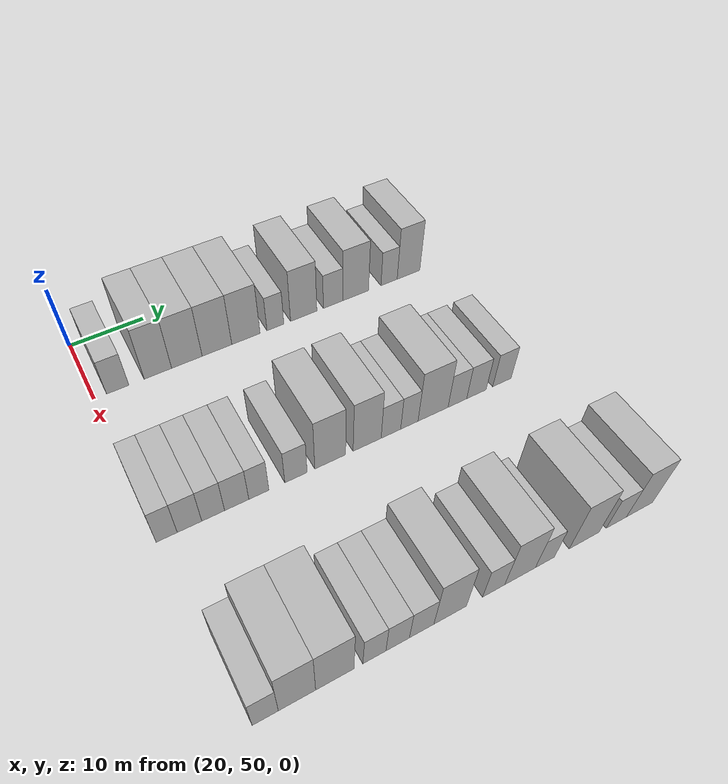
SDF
<sdf version="1.6">
 <world name="default">
  <model name="building_79">
   <static>1</static>
   <pose>25.0000 53.1087 0 0.000000 0.000000 0.000000</pose>
   <link name="link">
    <pose>0 0 3.00 0 0 0</pose>
    <collision name="collision"><geometry><box><size>10.0000 2.8990 6.0000</size></box></geometry></collision>
    <visual name="visual">
     <cast_shadows>0</cast_shadows>
     <geometry><box><size>10.0000 2.8990 6.0000</size></box></geometry>
     <material>
      <script>
       <uri>model://HANNAS_wall/materials/scripts</uri>
       <uri>model://HANNAS_wall/materials/textures</uri>
       <name>vrc/HANNAS_wall</name>
      </script>
     </material>
    </visual>
   </link>
  </model>
  <model name="building_80">
   <static>1</static>
   <pose>25.0000 58.3945 0 0.000000 0.000000 0.000000</pose>
   <link name="link">
    <pose>0 0 4.50 0 0 0</pose>
    <collision name="collision"><geometry><box><size>10.0000 3.6726 9.0000</size></box></geometry></collision>
    <visual name="visual">
     <cast_shadows>0</cast_shadows>
     <geometry><box><size>10.0000 3.6726 9.0000</size></box></geometry>
     <material>
      <script>
       <uri>model://HANNAS_wall/materials/scripts</uri>
       <uri>model://HANNAS_wall/materials/textures</uri>
       <name>vrc/HANNAS_wall</name>
      </script>
     </material>
    </visual>
   </link>
  </model>
  <model name="building_81">
   <static>1</static>
   <pose>25.0000 62.3206 0 0.000000 0.000000 0.000000</pose>
   <link name="link">
    <pose>0 0 4.50 0 0 0</pose>
    <collision name="collision"><geometry><box><size>10.0000 4.1797 9.0000</size></box></geometry></collision>
    <visual name="visual">
     <cast_shadows>0</cast_shadows>
     <geometry><box><size>10.0000 4.1797 9.0000</size></box></geometry>
     <material>
      <script>
       <uri>model://HANNAS_wall/materials/scripts</uri>
       <uri>model://HANNAS_wall/materials/textures</uri>
       <name>vrc/HANNAS_wall</name>
      </script>
     </material>
    </visual>
   </link>
  </model>
  <model name="building_82">
   <static>1</static>
   <pose>25.0000 66.4880 0 0.000000 0.000000 0.000000</pose>
   <link name="link">
    <pose>0 0 4.50 0 0 0</pose>
    <collision name="collision"><geometry><box><size>10.0000 4.1550 9.0000</size></box></geometry></collision>
    <visual name="visual">
     <cast_shadows>0</cast_shadows>
     <geometry><box><size>10.0000 4.1550 9.0000</size></box></geometry>
     <material>
      <script>
       <uri>model://HANNAS_wall/materials/scripts</uri>
       <uri>model://HANNAS_wall/materials/textures</uri>
       <name>vrc/HANNAS_wall</name>
      </script>
     </material>
    </visual>
   </link>
  </model>
  <model name="building_83">
   <static>1</static>
   <pose>25.0000 70.5972 0 0.000000 0.000000 0.000000</pose>
   <link name="link">
    <pose>0 0 4.50 0 0 0</pose>
    <collision name="collision"><geometry><box><size>10.0000 4.0636 9.0000</size></box></geometry></collision>
    <visual name="visual">
     <cast_shadows>0</cast_shadows>
     <geometry><box><size>10.0000 4.0636 9.0000</size></box></geometry>
     <material>
      <script>
       <uri>model://HANNAS_wall/materials/scripts</uri>
       <uri>model://HANNAS_wall/materials/textures</uri>
       <name>vrc/HANNAS_wall</name>
      </script>
     </material>
    </visual>
   </link>
  </model>
  <model name="building_84">
   <static>1</static>
   <pose>25.0000 74.8687 0 0.000000 0.000000 0.000000</pose>
   <link name="link">
    <pose>0 0 3.00 0 0 0</pose>
    <collision name="collision"><geometry><box><size>10.0000 2.4794 6.0000</size></box></geometry></collision>
    <visual name="visual">
     <cast_shadows>0</cast_shadows>
     <geometry><box><size>10.0000 2.4794 6.0000</size></box></geometry>
     <material>
      <script>
       <uri>model://HANNAS_wall/materials/scripts</uri>
       <uri>model://HANNAS_wall/materials/textures</uri>
       <name>vrc/HANNAS_wall</name>
      </script>
     </material>
    </visual>
   </link>
  </model>
  <model name="building_85">
   <static>1</static>
   <pose>25.0000 79.0882 0 0.000000 0.000000 0.000000</pose>
   <link name="link">
    <pose>0 0 4.50 0 0 0</pose>
    <collision name="collision"><geometry><box><size>10.0000 3.9595 9.0000</size></box></geometry></collision>
    <visual name="visual">
     <cast_shadows>0</cast_shadows>
     <geometry><box><size>10.0000 3.9595 9.0000</size></box></geometry>
     <material>
      <script>
       <uri>model://HANNAS_wall/materials/scripts</uri>
       <uri>model://HANNAS_wall/materials/textures</uri>
       <name>vrc/HANNAS_wall</name>
      </script>
     </material>
    </visual>
   </link>
  </model>
  <model name="building_86">
   <static>1</static>
   <pose>25.0000 83.5553 0 0.000000 0.000000 0.000000</pose>
   <link name="link">
    <pose>0 0 3.00 0 0 0</pose>
    <collision name="collision"><geometry><box><size>10.0000 2.9748 6.0000</size></box></geometry></collision>
    <visual name="visual">
     <cast_shadows>0</cast_shadows>
     <geometry><box><size>10.0000 2.9748 6.0000</size></box></geometry>
     <material>
      <script>
       <uri>model://HANNAS_wall/materials/scripts</uri>
       <uri>model://HANNAS_wall/materials/textures</uri>
       <name>vrc/HANNAS_wall</name>
      </script>
     </material>
    </visual>
   </link>
  </model>
  <model name="building_87">
   <static>1</static>
   <pose>25.0000 87.0784 0 0.000000 0.000000 0.000000</pose>
   <link name="link">
    <pose>0 0 4.50 0 0 0</pose>
    <collision name="collision"><geometry><box><size>10.0000 4.0715 9.0000</size></box></geometry></collision>
    <visual name="visual">
     <cast_shadows>0</cast_shadows>
     <geometry><box><size>10.0000 4.0715 9.0000</size></box></geometry>
     <material>
      <script>
       <uri>model://HANNAS_wall/materials/scripts</uri>
       <uri>model://HANNAS_wall/materials/textures</uri>
       <name>vrc/HANNAS_wall</name>
      </script>
     </material>
    </visual>
   </link>
  </model>
  <model name="building_88">
   <static>1</static>
   <pose>25.0000 92.4299 0 0.000000 0.000000 0.000000</pose>
   <link name="link">
    <pose>0 0 3.00 0 0 0</pose>
    <collision name="collision"><geometry><box><size>10.0000 2.6314 6.0000</size></box></geometry></collision>
    <visual name="visual">
     <cast_shadows>0</cast_shadows>
     <geometry><box><size>10.0000 2.6314 6.0000</size></box></geometry>
     <material>
      <script>
       <uri>model://HANNAS_wall/materials/scripts</uri>
       <uri>model://HANNAS_wall/materials/textures</uri>
       <name>vrc/HANNAS_wall</name>
      </script>
     </material>
    </visual>
   </link>
  </model>
  <model name="building_89">
   <static>1</static>
   <pose>25.0000 95.6100 0 0.000000 0.000000 0.000000</pose>
   <link name="link">
    <pose>0 0 4.50 0 0 0</pose>
    <collision name="collision"><geometry><box><size>10.0000 3.7290 9.0000</size></box></geometry></collision>
    <visual name="visual">
     <cast_shadows>0</cast_shadows>
     <geometry><box><size>10.0000 3.7290 9.0000</size></box></geometry>
     <material>
      <script>
       <uri>model://HANNAS_wall/materials/scripts</uri>
       <uri>model://HANNAS_wall/materials/textures</uri>
       <name>vrc/HANNAS_wall</name>
      </script>
     </material>
    </visual>
   </link>
  </model>
  <model name="building_198">
   <static>1</static>
   <pose>47.0000 51.1799 0 0.000000 0.000000 0.000000</pose>
   <link name="link">
    <pose>0 0 3.00 0 0 0</pose>
    <collision name="collision"><geometry><box><size>10.0000 2.4320 6.0000</size></box></geometry></collision>
    <visual name="visual">
     <cast_shadows>0</cast_shadows>
     <geometry><box><size>10.0000 2.4320 6.0000</size></box></geometry>
     <material>
      <script>
       <uri>model://HANNAS_wall/materials/scripts</uri>
       <uri>model://HANNAS_wall/materials/textures</uri>
       <name>vrc/HANNAS_wall</name>
      </script>
     </material>
    </visual>
   </link>
  </model>
  <model name="building_199">
   <static>1</static>
   <pose>47.0000 53.8303 0 0.000000 0.000000 0.000000</pose>
   <link name="link">
    <pose>0 0 3.00 0 0 0</pose>
    <collision name="collision"><geometry><box><size>10.0000 2.8690 6.0000</size></box></geometry></collision>
    <visual name="visual">
     <cast_shadows>0</cast_shadows>
     <geometry><box><size>10.0000 2.8690 6.0000</size></box></geometry>
     <material>
      <script>
       <uri>model://HANNAS_wall/materials/scripts</uri>
       <uri>model://HANNAS_wall/materials/textures</uri>
       <name>vrc/HANNAS_wall</name>
      </script>
     </material>
    </visual>
   </link>
  </model>
  <model name="building_200">
   <static>1</static>
   <pose>47.0000 56.6304 0 0.000000 0.000000 0.000000</pose>
   <link name="link">
    <pose>0 0 3.00 0 0 0</pose>
    <collision name="collision"><geometry><box><size>10.0000 2.7310 6.0000</size></box></geometry></collision>
    <visual name="visual">
     <cast_shadows>0</cast_shadows>
     <geometry><box><size>10.0000 2.7310 6.0000</size></box></geometry>
     <material>
      <script>
       <uri>model://HANNAS_wall/materials/scripts</uri>
       <uri>model://HANNAS_wall/materials/textures</uri>
       <name>vrc/HANNAS_wall</name>
      </script>
     </material>
    </visual>
   </link>
  </model>
  <model name="building_201">
   <static>1</static>
   <pose>47.0000 59.4720 0 0.000000 0.000000 0.000000</pose>
   <link name="link">
    <pose>0 0 3.00 0 0 0</pose>
    <collision name="collision"><geometry><box><size>10.0000 2.9523 6.0000</size></box></geometry></collision>
    <visual name="visual">
     <cast_shadows>0</cast_shadows>
     <geometry><box><size>10.0000 2.9523 6.0000</size></box></geometry>
     <material>
      <script>
       <uri>model://HANNAS_wall/materials/scripts</uri>
       <uri>model://HANNAS_wall/materials/textures</uri>
       <name>vrc/HANNAS_wall</name>
      </script>
     </material>
    </visual>
   </link>
  </model>
  <model name="building_202">
   <static>1</static>
   <pose>47.0000 62.1938 0 0.000000 0.000000 0.000000</pose>
   <link name="link">
    <pose>0 0 3.00 0 0 0</pose>
    <collision name="collision"><geometry><box><size>10.0000 2.4914 6.0000</size></box></geometry></collision>
    <visual name="visual">
     <cast_shadows>0</cast_shadows>
     <geometry><box><size>10.0000 2.4914 6.0000</size></box></geometry>
     <material>
      <script>
       <uri>model://HANNAS_wall/materials/scripts</uri>
       <uri>model://HANNAS_wall/materials/textures</uri>
       <name>vrc/HANNAS_wall</name>
      </script>
     </material>
    </visual>
   </link>
  </model>
  <model name="building_203">
   <static>1</static>
   <pose>47.0000 66.8633 0 0.000000 0.000000 0.000000</pose>
   <link name="link">
    <pose>0 0 3.00 0 0 0</pose>
    <collision name="collision"><geometry><box><size>10.0000 2.8476 6.0000</size></box></geometry></collision>
    <visual name="visual">
     <cast_shadows>0</cast_shadows>
     <geometry><box><size>10.0000 2.8476 6.0000</size></box></geometry>
     <material>
      <script>
       <uri>model://HANNAS_wall/materials/scripts</uri>
       <uri>model://HANNAS_wall/materials/textures</uri>
       <name>vrc/HANNAS_wall</name>
      </script>
     </material>
    </visual>
   </link>
  </model>
  <model name="building_204">
   <static>1</static>
   <pose>47.0000 71.3145 0 0.000000 0.000000 0.000000</pose>
   <link name="link">
    <pose>0 0 4.50 0 0 0</pose>
    <collision name="collision"><geometry><box><size>10.0000 4.0547 9.0000</size></box></geometry></collision>
    <visual name="visual">
     <cast_shadows>0</cast_shadows>
     <geometry><box><size>10.0000 4.0547 9.0000</size></box></geometry>
     <material>
      <script>
       <uri>model://HANNAS_wall/materials/scripts</uri>
       <uri>model://HANNAS_wall/materials/textures</uri>
       <name>vrc/HANNAS_wall</name>
      </script>
     </material>
    </visual>
   </link>
  </model>
  <model name="building_205">
   <static>1</static>
   <pose>47.0000 76.2511 0 0.000000 0.000000 0.000000</pose>
   <link name="link">
    <pose>0 0 4.50 0 0 0</pose>
    <collision name="collision"><geometry><box><size>10.0000 3.8185 9.0000</size></box></geometry></collision>
    <visual name="visual">
     <cast_shadows>0</cast_shadows>
     <geometry><box><size>10.0000 3.8185 9.0000</size></box></geometry>
     <material>
      <script>
       <uri>model://HANNAS_wall/materials/scripts</uri>
       <uri>model://HANNAS_wall/materials/textures</uri>
       <name>vrc/HANNAS_wall</name>
      </script>
     </material>
    </visual>
   </link>
  </model>
  <model name="building_206">
   <static>1</static>
   <pose>47.0000 79.5154 0 0.000000 0.000000 0.000000</pose>
   <link name="link">
    <pose>0 0 3.00 0 0 0</pose>
    <collision name="collision"><geometry><box><size>10.0000 2.7102 6.0000</size></box></geometry></collision>
    <visual name="visual">
     <cast_shadows>0</cast_shadows>
     <geometry><box><size>10.0000 2.7102 6.0000</size></box></geometry>
     <material>
      <script>
       <uri>model://HANNAS_wall/materials/scripts</uri>
       <uri>model://HANNAS_wall/materials/textures</uri>
       <name>vrc/HANNAS_wall</name>
      </script>
     </material>
    </visual>
   </link>
  </model>
  <model name="building_207">
   <static>1</static>
   <pose>47.0000 82.0980 0 0.000000 0.000000 0.000000</pose>
   <link name="link">
    <pose>0 0 3.00 0 0 0</pose>
    <collision name="collision"><geometry><box><size>10.0000 2.4549 6.0000</size></box></geometry></collision>
    <visual name="visual">
     <cast_shadows>0</cast_shadows>
     <geometry><box><size>10.0000 2.4549 6.0000</size></box></geometry>
     <material>
      <script>
       <uri>model://HANNAS_wall/materials/scripts</uri>
       <uri>model://HANNAS_wall/materials/textures</uri>
       <name>vrc/HANNAS_wall</name>
      </script>
     </material>
    </visual>
   </link>
  </model>
  <model name="building_208">
   <static>1</static>
   <pose>47.0000 85.4906 0 0.000000 0.000000 0.000000</pose>
   <link name="link">
    <pose>0 0 4.50 0 0 0</pose>
    <collision name="collision"><geometry><box><size>10.0000 4.3303 9.0000</size></box></geometry></collision>
    <visual name="visual">
     <cast_shadows>0</cast_shadows>
     <geometry><box><size>10.0000 4.3303 9.0000</size></box></geometry>
     <material>
      <script>
       <uri>model://HANNAS_wall/materials/scripts</uri>
       <uri>model://HANNAS_wall/materials/textures</uri>
       <name>vrc/HANNAS_wall</name>
      </script>
     </material>
    </visual>
   </link>
  </model>
  <model name="building_209">
   <static>1</static>
   <pose>47.0000 89.0313 0 0.000000 0.000000 0.000000</pose>
   <link name="link">
    <pose>0 0 3.00 0 0 0</pose>
    <collision name="collision"><geometry><box><size>10.0000 2.7510 6.0000</size></box></geometry></collision>
    <visual name="visual">
     <cast_shadows>0</cast_shadows>
     <geometry><box><size>10.0000 2.7510 6.0000</size></box></geometry>
     <material>
      <script>
       <uri>model://HANNAS_wall/materials/scripts</uri>
       <uri>model://HANNAS_wall/materials/textures</uri>
       <name>vrc/HANNAS_wall</name>
      </script>
     </material>
    </visual>
   </link>
  </model>
  <model name="building_210">
   <static>1</static>
   <pose>47.0000 91.8618 0 0.000000 0.000000 0.000000</pose>
   <link name="link">
    <pose>0 0 3.00 0 0 0</pose>
    <collision name="collision"><geometry><box><size>10.0000 2.9099 6.0000</size></box></geometry></collision>
    <visual name="visual">
     <cast_shadows>0</cast_shadows>
     <geometry><box><size>10.0000 2.9099 6.0000</size></box></geometry>
     <material>
      <script>
       <uri>model://HANNAS_wall/materials/scripts</uri>
       <uri>model://HANNAS_wall/materials/textures</uri>
       <name>vrc/HANNAS_wall</name>
      </script>
     </material>
    </visual>
   </link>
  </model>
  <model name="building_211">
   <static>1</static>
   <pose>47.0000 95.7289 0 0.000000 0.000000 0.000000</pose>
   <link name="link">
    <pose>0 0 3.00 0 0 0</pose>
    <collision name="collision"><geometry><box><size>10.0000 2.8244 6.0000</size></box></geometry></collision>
    <visual name="visual">
     <cast_shadows>0</cast_shadows>
     <geometry><box><size>10.0000 2.8244 6.0000</size></box></geometry>
     <material>
      <script>
       <uri>model://HANNAS_wall/materials/scripts</uri>
       <uri>model://HANNAS_wall/materials/textures</uri>
       <name>vrc/HANNAS_wall</name>
      </script>
     </material>
    </visual>
   </link>
  </model>
  <model name="building_321">
   <static>1</static>
   <pose>69.0000 52.5843 0 0.000000 0.000000 0.000000</pose>
   <link name="link">
    <pose>0 0 3.00 0 0 0</pose>
    <collision name="collision"><geometry><box><size>10.0000 2.7137 6.0000</size></box></geometry></collision>
    <visual name="visual">
     <cast_shadows>0</cast_shadows>
     <geometry><box><size>10.0000 2.7137 6.0000</size></box></geometry>
     <material>
      <script>
       <uri>model://HANNAS_wall/materials/scripts</uri>
       <uri>model://HANNAS_wall/materials/textures</uri>
       <name>vrc/HANNAS_wall</name>
      </script>
     </material>
    </visual>
   </link>
  </model>
  <model name="building_322">
   <static>1</static>
   <pose>69.0000 55.9222 0 0.000000 0.000000 0.000000</pose>
   <link name="link">
    <pose>0 0 4.50 0 0 0</pose>
    <collision name="collision"><geometry><box><size>10.0000 3.9621 9.0000</size></box></geometry></collision>
    <visual name="visual">
     <cast_shadows>0</cast_shadows>
     <geometry><box><size>10.0000 3.9621 9.0000</size></box></geometry>
     <material>
      <script>
       <uri>model://HANNAS_wall/materials/scripts</uri>
       <uri>model://HANNAS_wall/materials/textures</uri>
       <name>vrc/HANNAS_wall</name>
      </script>
     </material>
    </visual>
   </link>
  </model>
  <model name="building_323">
   <static>1</static>
   <pose>69.0000 60.0016 0 0.000000 0.000000 0.000000</pose>
   <link name="link">
    <pose>0 0 4.50 0 0 0</pose>
    <collision name="collision"><geometry><box><size>10.0000 4.1967 9.0000</size></box></geometry></collision>
    <visual name="visual">
     <cast_shadows>0</cast_shadows>
     <geometry><box><size>10.0000 4.1967 9.0000</size></box></geometry>
     <material>
      <script>
       <uri>model://HANNAS_wall/materials/scripts</uri>
       <uri>model://HANNAS_wall/materials/textures</uri>
       <name>vrc/HANNAS_wall</name>
      </script>
     </material>
    </visual>
   </link>
  </model>
  <model name="building_324">
   <static>1</static>
   <pose>69.0000 64.4091 0 0.000000 0.000000 0.000000</pose>
   <link name="link">
    <pose>0 0 3.00 0 0 0</pose>
    <collision name="collision"><geometry><box><size>10.0000 2.6183 6.0000</size></box></geometry></collision>
    <visual name="visual">
     <cast_shadows>0</cast_shadows>
     <geometry><box><size>10.0000 2.6183 6.0000</size></box></geometry>
     <material>
      <script>
       <uri>model://HANNAS_wall/materials/scripts</uri>
       <uri>model://HANNAS_wall/materials/textures</uri>
       <name>vrc/HANNAS_wall</name>
      </script>
     </material>
    </visual>
   </link>
  </model>
  <model name="building_325">
   <static>1</static>
   <pose>69.0000 67.0778 0 0.000000 0.000000 0.000000</pose>
   <link name="link">
    <pose>0 0 3.00 0 0 0</pose>
    <collision name="collision"><geometry><box><size>10.0000 2.7191 6.0000</size></box></geometry></collision>
    <visual name="visual">
     <cast_shadows>0</cast_shadows>
     <geometry><box><size>10.0000 2.7191 6.0000</size></box></geometry>
     <material>
      <script>
       <uri>model://HANNAS_wall/materials/scripts</uri>
       <uri>model://HANNAS_wall/materials/textures</uri>
       <name>vrc/HANNAS_wall</name>
      </script>
     </material>
    </visual>
   </link>
  </model>
  <model name="building_326">
   <static>1</static>
   <pose>69.0000 69.8895 0 0.000000 0.000000 0.000000</pose>
   <link name="link">
    <pose>0 0 3.00 0 0 0</pose>
    <collision name="collision"><geometry><box><size>10.0000 2.9042 6.0000</size></box></geometry></collision>
    <visual name="visual">
     <cast_shadows>0</cast_shadows>
     <geometry><box><size>10.0000 2.9042 6.0000</size></box></geometry>
     <material>
      <script>
       <uri>model://HANNAS_wall/materials/scripts</uri>
       <uri>model://HANNAS_wall/materials/textures</uri>
       <name>vrc/HANNAS_wall</name>
      </script>
     </material>
    </visual>
   </link>
  </model>
  <model name="building_327">
   <static>1</static>
   <pose>69.0000 73.3244 0 0.000000 0.000000 0.000000</pose>
   <link name="link">
    <pose>0 0 4.50 0 0 0</pose>
    <collision name="collision"><geometry><box><size>10.0000 3.9657 9.0000</size></box></geometry></collision>
    <visual name="visual">
     <cast_shadows>0</cast_shadows>
     <geometry><box><size>10.0000 3.9657 9.0000</size></box></geometry>
     <material>
      <script>
       <uri>model://HANNAS_wall/materials/scripts</uri>
       <uri>model://HANNAS_wall/materials/textures</uri>
       <name>vrc/HANNAS_wall</name>
      </script>
     </material>
    </visual>
   </link>
  </model>
  <model name="building_328">
   <static>1</static>
   <pose>69.0000 78.7101 0 0.000000 0.000000 0.000000</pose>
   <link name="link">
    <pose>0 0 3.00 0 0 0</pose>
    <collision name="collision"><geometry><box><size>10.0000 2.8056 6.0000</size></box></geometry></collision>
    <visual name="visual">
     <cast_shadows>0</cast_shadows>
     <geometry><box><size>10.0000 2.8056 6.0000</size></box></geometry>
     <material>
      <script>
       <uri>model://HANNAS_wall/materials/scripts</uri>
       <uri>model://HANNAS_wall/materials/textures</uri>
       <name>vrc/HANNAS_wall</name>
      </script>
     </material>
    </visual>
   </link>
  </model>
  <model name="building_329">
   <static>1</static>
   <pose>69.0000 82.1051 0 0.000000 0.000000 0.000000</pose>
   <link name="link">
    <pose>0 0 4.50 0 0 0</pose>
    <collision name="collision"><geometry><box><size>10.0000 3.9844 9.0000</size></box></geometry></collision>
    <visual name="visual">
     <cast_shadows>0</cast_shadows>
     <geometry><box><size>10.0000 3.9844 9.0000</size></box></geometry>
     <material>
      <script>
       <uri>model://HANNAS_wall/materials/scripts</uri>
       <uri>model://HANNAS_wall/materials/textures</uri>
       <name>vrc/HANNAS_wall</name>
      </script>
     </material>
    </visual>
   </link>
  </model>
  <model name="building_330">
   <static>1</static>
   <pose>69.0000 85.3553 0 0.000000 0.000000 0.000000</pose>
   <link name="link">
    <pose>0 0 3.00 0 0 0</pose>
    <collision name="collision"><geometry><box><size>10.0000 2.5160 6.0000</size></box></geometry></collision>
    <visual name="visual">
     <cast_shadows>0</cast_shadows>
     <geometry><box><size>10.0000 2.5160 6.0000</size></box></geometry>
     <material>
      <script>
       <uri>model://HANNAS_wall/materials/scripts</uri>
       <uri>model://HANNAS_wall/materials/textures</uri>
       <name>vrc/HANNAS_wall</name>
      </script>
     </material>
    </visual>
   </link>
  </model>
  <model name="building_331">
   <static>1</static>
   <pose>69.0000 90.6697 0 0.000000 0.000000 0.000000</pose>
   <link name="link">
    <pose>0 0 4.50 0 0 0</pose>
    <collision name="collision"><geometry><box><size>10.0000 4.1126 9.0000</size></box></geometry></collision>
    <visual name="visual">
     <cast_shadows>0</cast_shadows>
     <geometry><box><size>10.0000 4.1126 9.0000</size></box></geometry>
     <material>
      <script>
       <uri>model://HANNAS_wall/materials/scripts</uri>
       <uri>model://HANNAS_wall/materials/textures</uri>
       <name>vrc/HANNAS_wall</name>
      </script>
     </material>
    </visual>
   </link>
  </model>
  <model name="building_332">
   <static>1</static>
   <pose>69.0000 95.1645 0 0.000000 0.000000 0.000000</pose>
   <link name="link">
    <pose>0 0 3.00 0 0 0</pose>
    <collision name="collision"><geometry><box><size>10.0000 2.8770 6.0000</size></box></geometry></collision>
    <visual name="visual">
     <cast_shadows>0</cast_shadows>
     <geometry><box><size>10.0000 2.8770 6.0000</size></box></geometry>
     <material>
      <script>
       <uri>model://HANNAS_wall/materials/scripts</uri>
       <uri>model://HANNAS_wall/materials/textures</uri>
       <name>vrc/HANNAS_wall</name>
      </script>
     </material>
    </visual>
   </link>
  </model>
  <model name="building_333">
   <static>1</static>
   <pose>69.0000 98.4931 0 0.000000 0.000000 0.000000</pose>
   <link name="link">
    <pose>0 0 4.50 0 0 0</pose>
    <collision name="collision"><geometry><box><size>10.0000 3.7803 9.0000</size></box></geometry></collision>
    <visual name="visual">
     <cast_shadows>0</cast_shadows>
     <geometry><box><size>10.0000 3.7803 9.0000</size></box></geometry>
     <material>
      <script>
       <uri>model://HANNAS_wall/materials/scripts</uri>
       <uri>model://HANNAS_wall/materials/textures</uri>
       <name>vrc/HANNAS_wall</name>
      </script>
     </material>
    </visual>
   </link>
  </model>
 </world>
</sdf>
